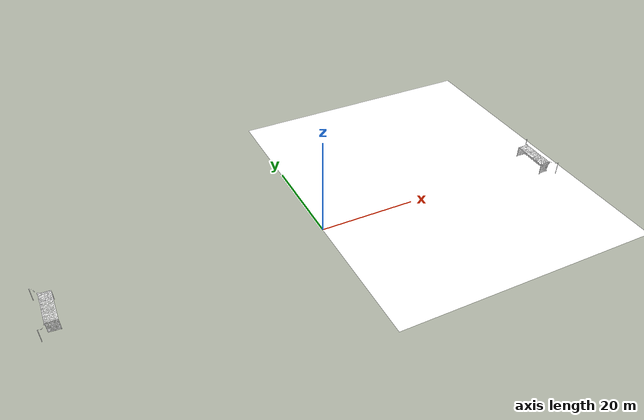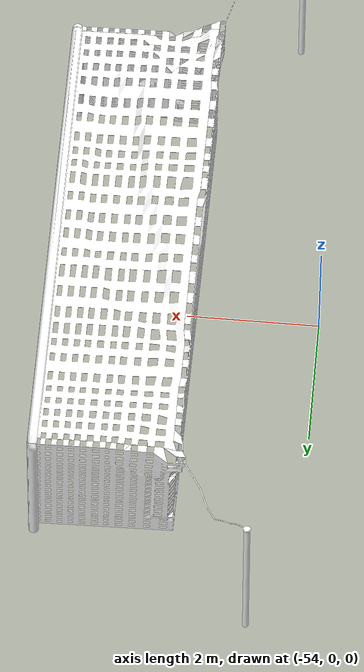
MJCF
<?xml version="1.0" encoding="utf-8"?>
<mujoco model="soccer_pitch">

    <compiler angle="radian" meshdir=".." texturedir=".."/>

    <asset>
        <texture name="soccer_pitch_tex" type="2d" file="../../envs/myo/assets/leg_soccer/soccer_assets/soccer_scene/SoccerPitch.png"/>
        <material name="soccer_pitch_mat" texture="soccer_pitch_tex" specular="0.5" shininess="0.5" reflectance="0.0"/>

        <mesh name="goal_mesh_top" file="../../envs/myo/assets/leg_soccer/soccer_assets/soccer_scene/SoccerPitch_goal_top.obj" />
        <mesh name="goal_mesh_back" file="../../envs/myo/assets/leg_soccer/soccer_assets/soccer_scene/SoccerPitch_goal_back.obj" />
        <mesh name="goal_mesh_right" file="../../envs/myo/assets/leg_soccer/soccer_assets/soccer_scene/SoccerPitch_goal_right.obj" />
        <mesh name="goal_mesh_left" file="../../envs/myo/assets/leg_soccer/soccer_assets/soccer_scene/SoccerPitch_goal_left.obj" />

        <material name="goal_material" rgba="1 1 1 1" specular="0.2" shininess="0.3"/>
    </asset>

    <worldbody>

      <geom name="soccer_floor_1" type="plane" size="28.1 40 0.1" material="soccer_pitch_mat" rgba="1 1 1 1" pos="28.1 0 0" euler="0 0 0"/>
      <geom name="soccer_floor_2" type="plane" size="28.1 40 0.1" material="soccer_pitch_mat" rgba="1 1 1 1" pos="-28.1 0 0" euler="0 0 3.14"/>

      <geom name="goal_geomA_top" type="mesh" mesh="goal_mesh_top"
            material="goal_material" rgba="1 1 1 1"
            pos="0 0 0" euler="1.57 0 0"/>
      <geom name="goal_geomA_back" type="mesh" mesh="goal_mesh_back"
            material="goal_material" rgba="1 1 1 1"
            pos="0 0 0" euler="1.57 0 0"/>
      <geom name="goal_geomA_right" type="mesh" mesh="goal_mesh_right"
            material="goal_material" rgba="1 1 1 1"
            pos="0 0 0" euler="1.57 0 0"/>
      <geom name="goal_geomA_left" type="mesh" mesh="goal_mesh_left"
            material="goal_material" rgba="1 1 1 1"
            pos="0 0 0" euler="1.57 0 0"/>

      <geom name="goal_geomB_top" type="mesh" mesh="goal_mesh_top"
            material="goal_material" rgba="1 1 1 1"
            pos="0 0 0" euler="1.57 3.14 0"/>
      <geom name="goal_geomB_back" type="mesh" mesh="goal_mesh_back"
            material="goal_material" rgba="1 1 1 1"
            pos="0 0 0" euler="1.57 3.14 0"/>
      <geom name="goal_geomB_right" type="mesh" mesh="goal_mesh_right"
            material="goal_material" rgba="1 1 1 1"
            pos="0 0 0" euler="1.57 3.14 0"/>
      <geom name="goal_geomB_left" type="mesh" mesh="goal_mesh_left"
            material="goal_material" rgba="1 1 1 1"
            pos="0 0 0" euler="1.57 3.14 0"/>
    </worldbody>
</mujoco>
